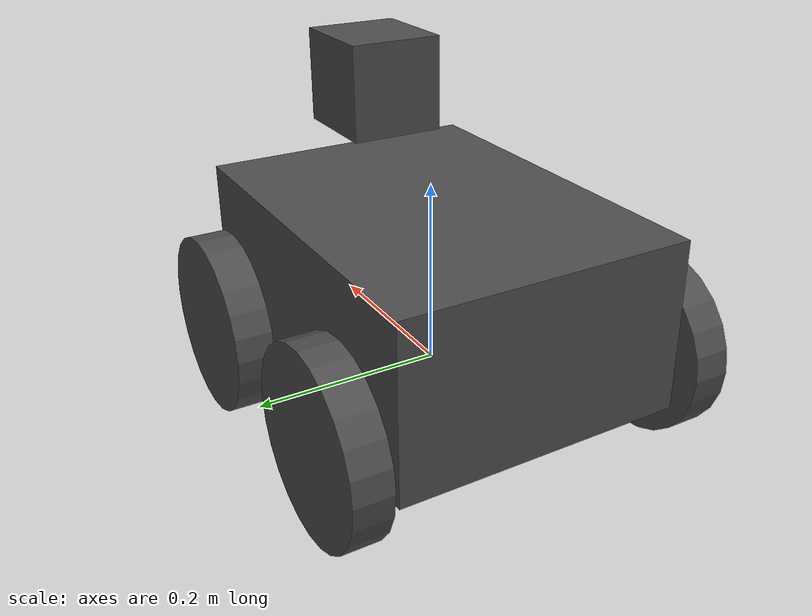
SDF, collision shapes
<sdf version='1.6'>
  <model name='jackal'>
    <link name='base_link'>
      <pose frame=''>0 0 0 0 -0 0</pose>
      <inertial>
        <pose frame=''>0.01874 0.001875 0.083599 0 -0 0</pose>
        <mass>17.624</mass>
        <inertia>
          <ixx>0.389656</ixx>
          <ixy>-0.000577266</ixy>
          <ixz>-0.0132299</ixz>
          <iyy>0.480339</iyy>
          <iyz>-0.000351484</iyz>
          <izz>0.462498</izz>
        </inertia>
      </inertial>
      <collision name='base_link_fixed_joint_lump__chassis_link_collision'>
        <pose frame=''>0 0 0.092 0 -0 0</pose>
        <geometry>
          <box>
            <size>0.42 0.31 0.184</size>
          </box>
        </geometry>
        <surface>
          <contact>
            <ode/>
          </contact>
          <friction>
            <ode/>
          </friction>
        </surface>
      </collision>
      <collision name='base_link_fixed_joint_lump__front_laser_collision_1'>
        <pose frame=''>0.12 0 0.283 0 -0 0</pose>
        <geometry>
          <box>
            <size>0.105 0.1 0.1</size>
          </box>
        </geometry>
        <surface>
          <contact>
            <ode/>
          </contact>
          <friction>
            <ode/>
          </friction>
        </surface>
      </collision>
      <visual name='base_link_fixed_joint_lump__chassis_link_visual'>
        <pose frame=''>0 0 -0.0655 1.5708 -0 1.5708</pose>
        <geometry>
          <mesh>
            <scale>1 1 1</scale>
            <uri>model://jackal_description/meshes/jackal-base.stl</uri>
          </mesh>
        </geometry>
        <material>
          <script>
            <name>Gazebo/DarkGrey</name>
            <uri>file://media/materials/scripts/gazebo.material</uri>
          </script>
        </material>
      </visual>
      <visual name='base_link_fixed_joint_lump__front_fender_link_visual_1'>
        <pose frame=''>0 0 0 0 -0 0</pose>
        <geometry>
          <mesh>
            <scale>1 1 1</scale>
            <uri>model://jackal_description/meshes/jackal-fender.stl</uri>
          </mesh>
        </geometry>
        <material>
          <script>
            <name>Gazebo/Yellow</name>
            <uri>file://media/materials/scripts/gazebo.material</uri>
          </script>
        </material>
      </visual>
      <visual name='base_link_fixed_joint_lump__front_laser_mount_visual_2'>
        <pose frame=''>0.12 0 0.184 0 -0 0</pose>
        <geometry>
          <mesh>
            <scale>1 1 1</scale>
            <uri>model://jackal_description/meshes/sick-lms1xx-bracket.stl</uri>
          </mesh>
        </geometry>
        <material>
          <script>
            <name>Gazebo/DarkGrey</name>
            <uri>file://media/materials/scripts/gazebo.material</uri>
          </script>
        </material>
      </visual>
      <visual name='base_link_fixed_joint_lump__front_laser_visual_3'>
        <pose frame=''>0.12 0 0.333 0 -0 0</pose>
        <geometry>
          <mesh>
            <scale>1 1 1</scale>
            <uri>model://lms1xx/meshes/sick-lms1xx.dae</uri>
          </mesh>
        </geometry>
        <material>
          <script>
            <uri>__default__</uri>
            <name>__default__</name>
          </script>
        </material>
      </visual>
      <visual name='base_link_fixed_joint_lump__navsat_link_visual_4'>
        <pose frame=''>-0.18 0.126 0.1895 0 -0 0</pose>
        <geometry>
          <cylinder>
            <length>0.016</length>
            <radius>0.026</radius>
          </cylinder>
        </geometry>
        <material>
          <script>
            <name>Gazebo/DarkGrey</name>
            <uri>file://media/materials/scripts/gazebo.material</uri>
          </script>
        </material>
      </visual>
      <visual name='base_link_fixed_joint_lump__rear_fender_link_visual_5'>
        <pose frame=''>0 0 0 0 -0 -3.14159</pose>
        <geometry>
          <mesh>
            <scale>1 1 1</scale>
            <uri>model://jackal_description/meshes/jackal-fender.stl</uri>
          </mesh>
        </geometry>
        <material>
          <script>
            <name>Gazebo/Yellow</name>
            <uri>file://media/materials/scripts/gazebo.material</uri>
          </script>
        </material>
      </visual>
      <velocity_decay/>
      <velocity_decay/>
      <velocity_decay/>
      <velocity_decay/>
      <velocity_decay/>
      <velocity_decay/>
      <sensor name='front_laser' type='gpu_ray'>
        <visualize>0</visualize>
        <update_rate>50</update_rate>
        <ray>
          <scan>
            <horizontal>
              <samples>720</samples>
              <resolution>1</resolution>
              <min_angle>-2.35619</min_angle>
              <max_angle>2.35619</max_angle>
            </horizontal>
          </scan>
          <range>
            <min>0.1</min>
            <max>30</max>
            <resolution>0.01</resolution>
          </range>
          <noise>
            <type>gaussian</type>
            <mean>0</mean>
            <stddev>0.001</stddev>
          </noise>
        </ray>
        <plugin name='gazebo_ros_laser' filename='libgazebo_ros_gpu_laser.so'>
          <topicName>front/scan</topicName>
          <frameName>front_laser</frameName>
          <robotNamespace>/</robotNamespace>
        </plugin>
        <pose frame=''>0.12 0 0.333 0 -0 0</pose>
      </sensor>
      <velocity_decay/>
      <gravity>1</gravity>
      <velocity_decay/>
    </link>
    <link name='front_left_wheel_link'>
      <pose frame=''>0.131 0.187795 0.0345 0 -0 0</pose>
      <inertial>
        <pose frame=''>0 0 0 0 -0 0</pose>
        <mass>0.477</mass>
        <inertia>
          <ixx>0.0013</ixx>
          <ixy>0</ixy>
          <ixz>0</ixz>
          <iyy>0.0024</iyy>
          <iyz>0</iyz>
          <izz>0.0013</izz>
        </inertia>
      </inertial>
      <collision name='front_left_wheel_link_collision'>
        <pose frame=''>0 0 0 1.5708 -0 0</pose>
        <geometry>
          <cylinder>
            <length>0.04</length>
            <radius>0.098</radius>
          </cylinder>
        </geometry>
        <surface>
          <contact>
            <ode>
              <kp>1e+07</kp>
              <kd>1</kd>
            </ode>
          </contact>
          <friction>
            <ode>
              <mu>0.5</mu>
              <mu2>0.5</mu2>
              <fdir1>1 0 0</fdir1>
            </ode>
          </friction>
        </surface>
      </collision>
      <visual name='front_left_wheel_link_visual'>
        <pose frame=''>0 0 0 1.5708 -0 0</pose>
        <geometry>
          <mesh>
            <scale>1 1 1</scale>
            <uri>model://jackal_description/meshes/jackal-wheel.stl</uri>
          </mesh>
        </geometry>
        <material>
          <script>
            <name>Gazebo/DarkGrey</name>
            <uri>file://media/materials/scripts/gazebo.material</uri>
          </script>
        </material>
      </visual>
      <gravity>1</gravity>
      <velocity_decay/>
      <self_collide>0</self_collide>
    </link>
    <joint name='front_left_wheel' type='revolute'>
      <child>front_left_wheel_link</child>
      <parent>base_link</parent>
      <axis>
        <xyz>0 1 0</xyz>
        <limit>
          <lower>-1e+16</lower>
          <upper>1e+16</upper>
        </limit>
        <dynamics>
          <spring_reference>0</spring_reference>
          <spring_stiffness>0</spring_stiffness>
        </dynamics>
        <use_parent_model_frame>1</use_parent_model_frame>
      </axis>
    </joint>
    <link name='front_right_wheel_link'>
      <pose frame=''>0.131 -0.187795 0.0345 0 -0 0</pose>
      <inertial>
        <pose frame=''>0 0 0 0 -0 0</pose>
        <mass>0.477</mass>
        <inertia>
          <ixx>0.0013</ixx>
          <ixy>0</ixy>
          <ixz>0</ixz>
          <iyy>0.0024</iyy>
          <iyz>0</iyz>
          <izz>0.0013</izz>
        </inertia>
      </inertial>
      <collision name='front_right_wheel_link_collision'>
        <pose frame=''>0 0 0 1.5708 -0 0</pose>
        <geometry>
          <cylinder>
            <length>0.04</length>
            <radius>0.098</radius>
          </cylinder>
        </geometry>
        <surface>
          <contact>
            <ode>
              <kp>1e+07</kp>
              <kd>1</kd>
            </ode>
          </contact>
          <friction>
            <ode>
              <mu>0.5</mu>
              <mu2>0.5</mu2>
              <fdir1>1 0 0</fdir1>
            </ode>
          </friction>
        </surface>
      </collision>
      <visual name='front_right_wheel_link_visual'>
        <pose frame=''>0 0 0 1.5708 -0 0</pose>
        <geometry>
          <mesh>
            <scale>1 1 1</scale>
            <uri>model://jackal_description/meshes/jackal-wheel.stl</uri>
          </mesh>
        </geometry>
        <material>
          <script>
            <name>Gazebo/DarkGrey</name>
            <uri>file://media/materials/scripts/gazebo.material</uri>
          </script>
        </material>
      </visual>
      <gravity>1</gravity>
      <velocity_decay/>
      <self_collide>0</self_collide>
    </link>
    <joint name='front_right_wheel' type='revolute'>
      <child>front_right_wheel_link</child>
      <parent>base_link</parent>
      <axis>
        <xyz>0 1 0</xyz>
        <limit>
          <lower>-1e+16</lower>
          <upper>1e+16</upper>
        </limit>
        <dynamics>
          <spring_reference>0</spring_reference>
          <spring_stiffness>0</spring_stiffness>
        </dynamics>
        <use_parent_model_frame>1</use_parent_model_frame>
      </axis>
    </joint>
    <link name='rear_left_wheel_link'>
      <pose frame=''>-0.131 0.187795 0.0345 0 -0 0</pose>
      <inertial>
        <pose frame=''>0 0 0 0 -0 0</pose>
        <mass>0.477</mass>
        <inertia>
          <ixx>0.0013</ixx>
          <ixy>0</ixy>
          <ixz>0</ixz>
          <iyy>0.0024</iyy>
          <iyz>0</iyz>
          <izz>0.0013</izz>
        </inertia>
      </inertial>
      <collision name='rear_left_wheel_link_collision'>
        <pose frame=''>0 0 0 1.5708 -0 0</pose>
        <geometry>
          <cylinder>
            <length>0.04</length>
            <radius>0.098</radius>
          </cylinder>
        </geometry>
        <surface>
          <contact>
            <ode>
              <kp>1e+07</kp>
              <kd>1</kd>
            </ode>
          </contact>
          <friction>
            <ode>
              <mu>0.5</mu>
              <mu2>0.5</mu2>
              <fdir1>1 0 0</fdir1>
            </ode>
          </friction>
        </surface>
      </collision>
      <visual name='rear_left_wheel_link_visual'>
        <pose frame=''>0 0 0 1.5708 -0 0</pose>
        <geometry>
          <mesh>
            <scale>1 1 1</scale>
            <uri>model://jackal_description/meshes/jackal-wheel.stl</uri>
          </mesh>
        </geometry>
        <material>
          <script>
            <name>Gazebo/DarkGrey</name>
            <uri>file://media/materials/scripts/gazebo.material</uri>
          </script>
        </material>
      </visual>
      <gravity>1</gravity>
      <velocity_decay/>
      <self_collide>0</self_collide>
    </link>
    <joint name='rear_left_wheel' type='revolute'>
      <child>rear_left_wheel_link</child>
      <parent>base_link</parent>
      <axis>
        <xyz>0 1 0</xyz>
        <limit>
          <lower>-1e+16</lower>
          <upper>1e+16</upper>
        </limit>
        <dynamics>
          <spring_reference>0</spring_reference>
          <spring_stiffness>0</spring_stiffness>
        </dynamics>
        <use_parent_model_frame>1</use_parent_model_frame>
      </axis>
    </joint>
    <link name='rear_right_wheel_link'>
      <pose frame=''>-0.131 -0.187795 0.0345 0 -0 0</pose>
      <inertial>
        <pose frame=''>0 0 0 0 -0 0</pose>
        <mass>0.477</mass>
        <inertia>
          <ixx>0.0013</ixx>
          <ixy>0</ixy>
          <ixz>0</ixz>
          <iyy>0.0024</iyy>
          <iyz>0</iyz>
          <izz>0.0013</izz>
        </inertia>
      </inertial>
      <collision name='rear_right_wheel_link_collision'>
        <pose frame=''>0 0 0 1.5708 -0 0</pose>
        <geometry>
          <cylinder>
            <length>0.04</length>
            <radius>0.098</radius>
          </cylinder>
        </geometry>
        <surface>
          <contact>
            <ode>
              <kp>1e+07</kp>
              <kd>1</kd>
            </ode>
          </contact>
          <friction>
            <ode>
              <mu>0.5</mu>
              <mu2>0.5</mu2>
              <fdir1>1 0 0</fdir1>
            </ode>
          </friction>
        </surface>
      </collision>
      <visual name='rear_right_wheel_link_visual'>
        <pose frame=''>0 0 0 1.5708 -0 0</pose>
        <geometry>
          <mesh>
            <scale>1 1 1</scale>
            <uri>model://jackal_description/meshes/jackal-wheel.stl</uri>
          </mesh>
        </geometry>
        <material>
          <script>
            <name>Gazebo/DarkGrey</name>
            <uri>file://media/materials/scripts/gazebo.material</uri>
          </script>
        </material>
      </visual>
      <gravity>1</gravity>
      <velocity_decay/>
      <self_collide>0</self_collide>
    </link>
    <joint name='rear_right_wheel' type='revolute'>
      <child>rear_right_wheel_link</child>
      <parent>base_link</parent>
      <axis>
        <xyz>0 1 0</xyz>
        <limit>
          <lower>-1e+16</lower>
          <upper>1e+16</upper>
        </limit>
        <dynamics>
          <spring_reference>0</spring_reference>
          <spring_stiffness>0</spring_stiffness>
        </dynamics>
        <use_parent_model_frame>1</use_parent_model_frame>
      </axis>
    </joint>
    <plugin name='gazebo_ros_control' filename='libgazebo_ros_control.so'>
      <robotNamespace>/</robotNamespace>
    </plugin>
    <plugin name='imu_controller' filename='libhector_gazebo_ros_imu.so'>
      <robotNamespace>/</robotNamespace>
      <updateRate>50.0</updateRate>
      <topicName>imu/data</topicName>
      <accelDrift>0.005 0.005 0.005</accelDrift>
      <accelGaussianNoise>0.005 0.005 0.005</accelGaussianNoise>
      <rateDrift>0.005 0.005 0.005</rateDrift>
      <rateGaussianNoise>0.005 0.005 0.005</rateGaussianNoise>
      <headingDrift>0.005</headingDrift>
      <headingGaussianNoise>0.005</headingGaussianNoise>
      <bodyName>base_link</bodyName>
      <xyzOffset>0 0 0</xyzOffset>
      <rpyOffset>0 -0 0</rpyOffset>
    </plugin>
    <static>0</static>
    <plugin name='gps_controller' filename='libhector_gazebo_ros_gps.so'>
      <updateRate>40</updateRate>
      <robotNamespace>/</robotNamespace>
      <frameId>base_link</frameId>
      <topicName>/navsat/fix</topicName>
      <velocityTopicName>/navsat/vel</velocityTopicName>
      <referenceLatitude>49.9</referenceLatitude>
      <referenceLongitude>8.9</referenceLongitude>
      <referenceHeading>0</referenceHeading>
      <referenceAltitude>0</referenceAltitude>
      <drift>0.0001 0.0001 0.0001</drift>
      <bodyName>base_link</bodyName>
      <xyzOffset>0.18 -0.126 -0.1815</xyzOffset>
      <rpyOffset>0 -0 0</rpyOffset>
    </plugin>
  </model>
</sdf>
